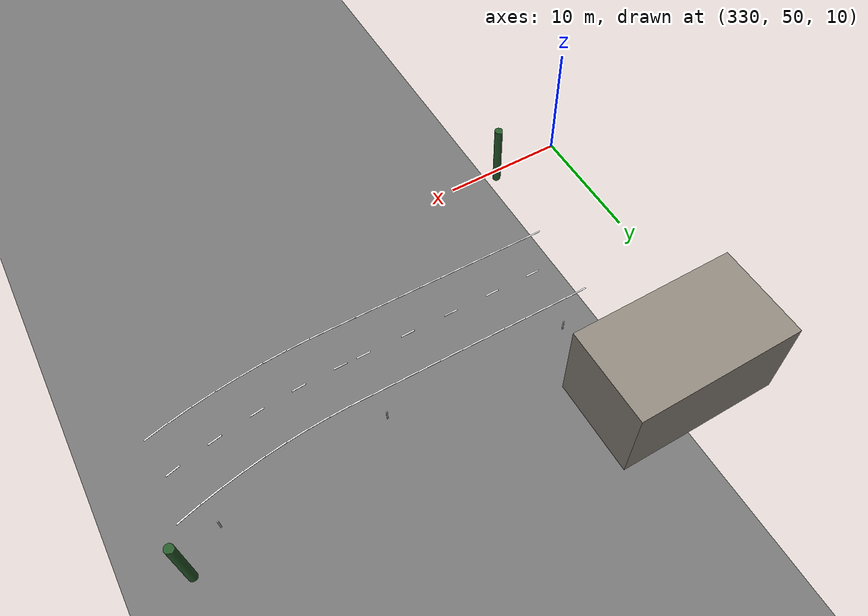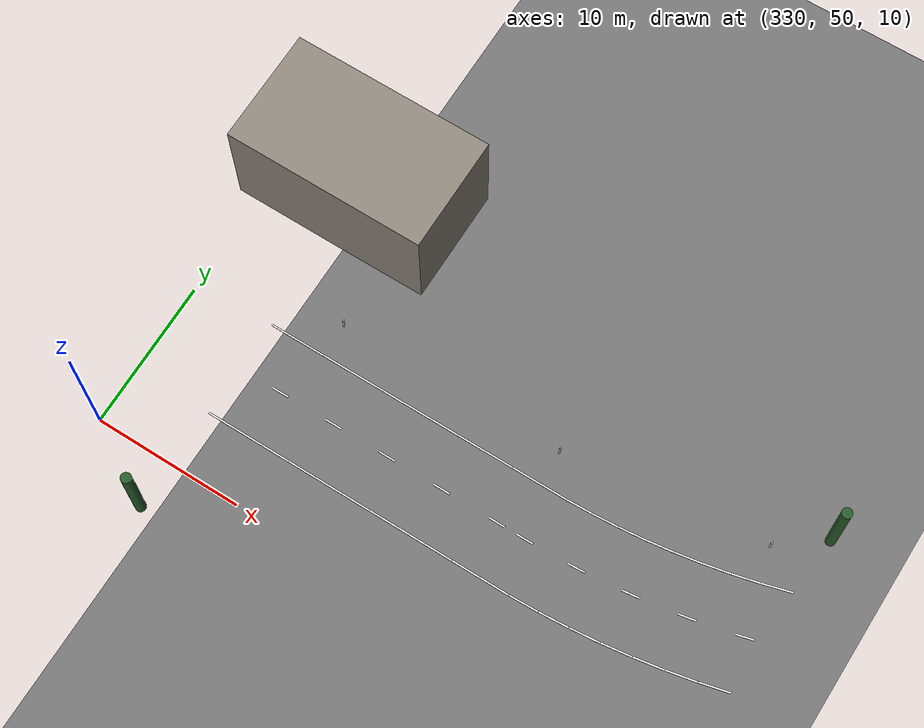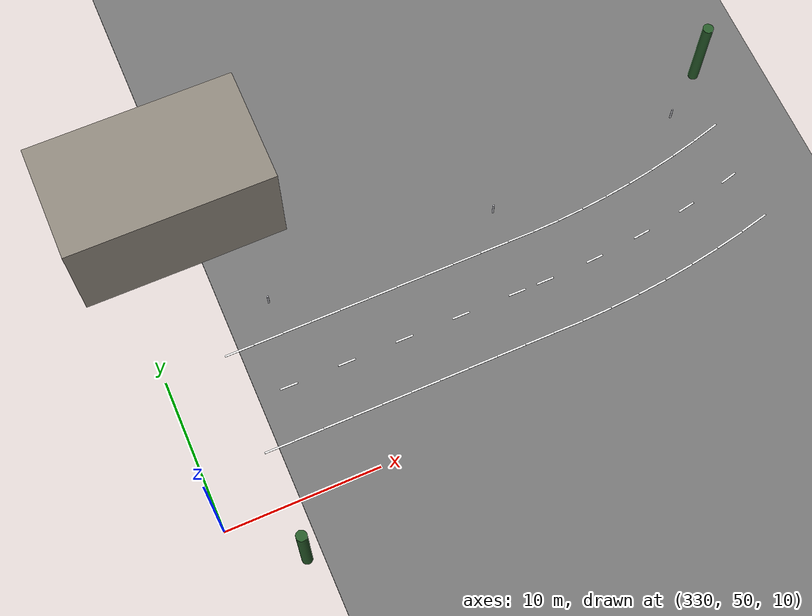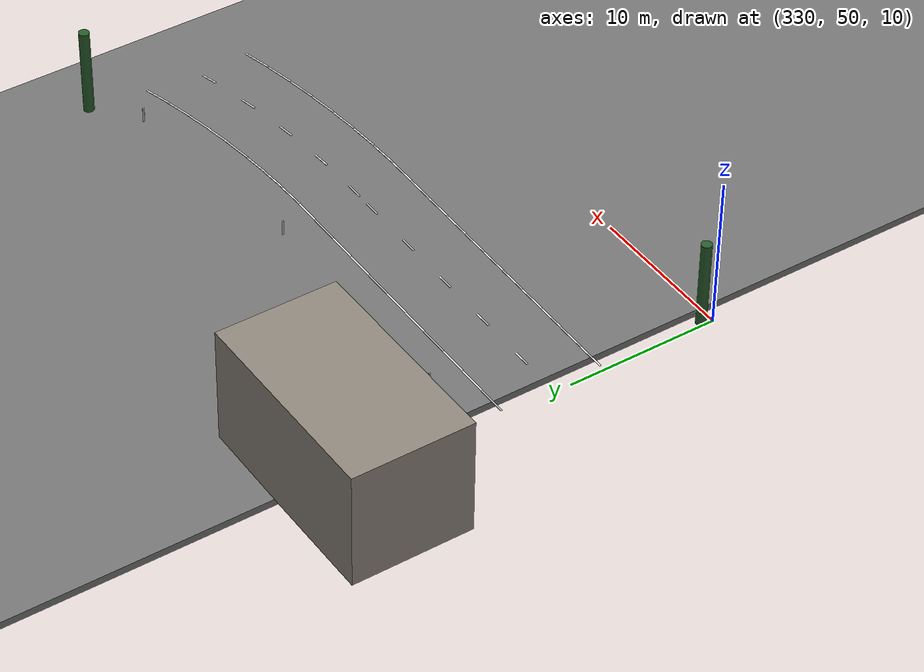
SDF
<sdf version="1.4">
 <world name="marathon_course">
  <include><uri>model://sun</uri></include>
  <model name="road_9">
   <static>true</static>
   <pose>355.2043631016093 37.70038853386919 5.950077138713788 0 -0.017453292519943295 0</pose>
   <link name="link">
    <collision name="collision">
     <geometry><box><size>40.4 125.40077706773837 0.5</size></box></geometry>
    </collision>
    <visual name="visual">
     <geometry><box><size>40.4 125.40077706773837 0.5</size></box></geometry>
     <material><ambient>0.45 0.45 0.45 1</ambient><diffuse>0.45 0.45 0.45 1</diffuse></material>
    </visual>
   </link>
  </model>
  <model name="paint_left_edge_172">
   <static>true</static>
   <pose>335.08319472663095 61.80058280080378 5.868898920307919 0 0 0.0</pose>
   <link name="link">
    <visual name="visual">
     <geometry><box><size>2.05 0.12 0.02</size></box></geometry>
     <material><ambient>0.95 0.95 0.95 1</ambient><diffuse>0.95 0.95 0.95 1</diffuse></material>
    </visual>
   </link>
  </model>
  <model name="paint_left_edge_173">
   <static>true</static>
   <pose>337.08319472663095 61.80058280080378 5.903809050164354 0 0 0.0</pose>
   <link name="link">
    <visual name="visual">
     <geometry><box><size>2.05 0.12 0.02</size></box></geometry>
     <material><ambient>0.95 0.95 0.95 1</ambient><diffuse>0.95 0.95 0.95 1</diffuse></material>
    </visual>
   </link>
  </model>
  <model name="paint_left_edge_174">
   <static>true</static>
   <pose>339.08319472663095 61.80058280080378 5.938719180020789 0 0 0.0</pose>
   <link name="link">
    <visual name="visual">
     <geometry><box><size>2.05 0.12 0.02</size></box></geometry>
     <material><ambient>0.95 0.95 0.95 1</ambient><diffuse>0.95 0.95 0.95 1</diffuse></material>
    </visual>
   </link>
  </model>
  <model name="paint_left_edge_175">
   <static>true</static>
   <pose>341.08319472663095 61.80058280080378 5.973629309877225 0 0 0.0</pose>
   <link name="link">
    <visual name="visual">
     <geometry><box><size>2.05 0.12 0.02</size></box></geometry>
     <material><ambient>0.95 0.95 0.95 1</ambient><diffuse>0.95 0.95 0.95 1</diffuse></material>
    </visual>
   </link>
  </model>
  <model name="paint_left_edge_176">
   <static>true</static>
   <pose>343.08319472663095 61.80058280080378 6.00853943973366 0 0 0.0</pose>
   <link name="link">
    <visual name="visual">
     <geometry><box><size>2.05 0.12 0.02</size></box></geometry>
     <material><ambient>0.95 0.95 0.95 1</ambient><diffuse>0.95 0.95 0.95 1</diffuse></material>
    </visual>
   </link>
  </model>
  <model name="paint_left_edge_177">
   <static>true</static>
   <pose>345.08319472663095 61.80058280080378 6.043449569590095 0 0 0.0</pose>
   <link name="link">
    <visual name="visual">
     <geometry><box><size>2.05 0.12 0.02</size></box></geometry>
     <material><ambient>0.95 0.95 0.95 1</ambient><diffuse>0.95 0.95 0.95 1</diffuse></material>
    </visual>
   </link>
  </model>
  <model name="paint_left_edge_178">
   <static>true</static>
   <pose>347.08319472663095 61.80058280080378 6.07835969944653 0 0 0.0</pose>
   <link name="link">
    <visual name="visual">
     <geometry><box><size>2.05 0.12 0.02</size></box></geometry>
     <material><ambient>0.95 0.95 0.95 1</ambient><diffuse>0.95 0.95 0.95 1</diffuse></material>
    </visual>
   </link>
  </model>
  <model name="paint_left_edge_179">
   <static>true</static>
   <pose>349.08319472663095 61.80058280080378 6.113269829302966 0 0 0.0</pose>
   <link name="link">
    <visual name="visual">
     <geometry><box><size>2.05 0.12 0.02</size></box></geometry>
     <material><ambient>0.95 0.95 0.95 1</ambient><diffuse>0.95 0.95 0.95 1</diffuse></material>
    </visual>
   </link>
  </model>
  <model name="paint_left_edge_180">
   <static>true</static>
   <pose>351.08319472663095 61.80058280080378 6.148179959159401 0 0 0.0</pose>
   <link name="link">
    <visual name="visual">
     <geometry><box><size>2.05 0.12 0.02</size></box></geometry>
     <material><ambient>0.95 0.95 0.95 1</ambient><diffuse>0.95 0.95 0.95 1</diffuse></material>
    </visual>
   </link>
  </model>
  <model name="paint_left_edge_181">
   <static>true</static>
   <pose>353.08319472663095 61.80058280080378 6.183090089015836 0 0 0.0</pose>
   <link name="link">
    <visual name="visual">
     <geometry><box><size>2.05 0.12 0.02</size></box></geometry>
     <material><ambient>0.95 0.95 0.95 1</ambient><diffuse>0.95 0.95 0.95 1</diffuse></material>
    </visual>
   </link>
  </model>
  <model name="paint_left_edge_182">
   <static>true</static>
   <pose>355.08319472663095 61.80058280080378 6.2180002188722705 0 0 0.0</pose>
   <link name="link">
    <visual name="visual">
     <geometry><box><size>2.05 0.12 0.02</size></box></geometry>
     <material><ambient>0.95 0.95 0.95 1</ambient><diffuse>0.95 0.95 0.95 1</diffuse></material>
    </visual>
   </link>
  </model>
  <model name="paint_left_edge_183">
   <static>true</static>
   <pose>356.92048003579043 61.83141903989871 6.25007015323531 0 0 0.03356402407681403</pose>
   <link name="link">
    <visual name="visual">
     <geometry><box><size>2.05 0.12 0.02</size></box></geometry>
     <material><ambient>0.95 0.95 0.95 1</ambient><diffuse>0.95 0.95 0.95 1</diffuse></material>
    </visual>
   </link>
  </model>
  <model name="paint_left_edge_184">
   <static>true</static>
   <pose>358.7556957570383 61.92389302207331 6.2821039628069775 0 0 0.06712804815362806</pose>
   <link name="link">
    <visual name="visual">
     <geometry><box><size>2.05 0.12 0.02</size></box></geometry>
     <material><ambient>0.95 0.95 0.95 1</ambient><diffuse>0.95 0.95 0.95 1</diffuse></material>
    </visual>
   </link>
  </model>
  <model name="paint_left_edge_185">
   <static>true</static>
   <pose>360.5867746337255 62.077900581123934 6.31406556348824 0 0 0.10069207223044209</pose>
   <link name="link">
    <visual name="visual">
     <geometry><box><size>2.05 0.12 0.02</size></box></geometry>
     <material><ambient>0.95 0.95 0.95 1</ambient><diffuse>0.95 0.95 0.95 1</diffuse></material>
    </visual>
   </link>
  </model>
  <model name="paint_left_edge_186">
   <static>true</static>
   <pose>362.41165406910153 62.29326823709029 6.345918952518898 0 0 0.13425609630725613</pose>
   <link name="link">
    <visual name="visual">
     <geometry><box><size>2.05 0.12 0.02</size></box></geometry>
     <material><ambient>0.95 0.95 0.95 1</ambient><diffuse>0.95 0.95 0.95 1</diffuse></material>
    </visual>
   </link>
  </model>
  <model name="paint_left_edge_187">
   <static>true</static>
   <pose>364.228278449702 62.56975339166982 6.377628249032462 0 0 0.16782012038407015</pose>
   <link name="link">
    <visual name="visual">
     <geometry><box><size>2.05 0.12 0.02</size></box></geometry>
     <material><ambient>0.95 0.95 0.95 1</ambient><diffuse>0.95 0.95 0.95 1</diffuse></material>
    </visual>
   </link>
  </model>
  <model name="paint_left_edge_188">
   <static>true</static>
   <pose>366.03460146086934 62.90704460148963 6.409157734473721 0 0 0.20138414446088418</pose>
   <link name="link">
    <visual name="visual">
     <geometry><box><size>2.05 0.12 0.02</size></box></geometry>
     <material><ambient>0.95 0.95 0.95 1</ambient><diffuse>0.95 0.95 0.95 1</diffuse></material>
    </visual>
   </link>
  </model>
  <model name="paint_left_edge_189">
   <static>true</static>
   <pose>367.8285883918 63.30476192892814 6.440471892833489 0 0 0.2349481685376982</pose>
   <link name="link">
    <visual name="visual">
     <geometry><box><size>2.05 0.12 0.02</size></box></geometry>
     <material><ambient>0.95 0.95 0.95 1</ambient><diffuse>0.95 0.95 0.95 1</diffuse></material>
    </visual>
   </link>
  </model>
  <model name="paint_left_edge_190">
   <static>true</static>
   <pose>369.60821842751903 63.76245737009124 6.471535450655172 0 0 0.26851219261451226</pose>
   <link name="link">
    <visual name="visual">
     <geometry><box><size>2.05 0.12 0.02</size></box></geometry>
     <material><ambient>0.95 0.95 0.95 1</ambient><diffuse>0.95 0.95 0.95 1</diffuse></material>
    </visual>
   </link>
  </model>
  <model name="paint_right_edge_172">
   <static>true</static>
   <pose>335.08319472663095 54.80058280080378 5.868898920307919 0 0 0.0</pose>
   <link name="link">
    <visual name="visual">
     <geometry><box><size>2.05 0.12 0.02</size></box></geometry>
     <material><ambient>0.95 0.95 0.95 1</ambient><diffuse>0.95 0.95 0.95 1</diffuse></material>
    </visual>
   </link>
  </model>
  <model name="paint_right_edge_173">
   <static>true</static>
   <pose>337.08319472663095 54.80058280080378 5.903809050164354 0 0 0.0</pose>
   <link name="link">
    <visual name="visual">
     <geometry><box><size>2.05 0.12 0.02</size></box></geometry>
     <material><ambient>0.95 0.95 0.95 1</ambient><diffuse>0.95 0.95 0.95 1</diffuse></material>
    </visual>
   </link>
  </model>
  <model name="paint_right_edge_174">
   <static>true</static>
   <pose>339.08319472663095 54.80058280080378 5.938719180020789 0 0 0.0</pose>
   <link name="link">
    <visual name="visual">
     <geometry><box><size>2.05 0.12 0.02</size></box></geometry>
     <material><ambient>0.95 0.95 0.95 1</ambient><diffuse>0.95 0.95 0.95 1</diffuse></material>
    </visual>
   </link>
  </model>
  <model name="paint_right_edge_175">
   <static>true</static>
   <pose>341.08319472663095 54.80058280080378 5.973629309877225 0 0 0.0</pose>
   <link name="link">
    <visual name="visual">
     <geometry><box><size>2.05 0.12 0.02</size></box></geometry>
     <material><ambient>0.95 0.95 0.95 1</ambient><diffuse>0.95 0.95 0.95 1</diffuse></material>
    </visual>
   </link>
  </model>
  <model name="paint_right_edge_176">
   <static>true</static>
   <pose>343.08319472663095 54.80058280080378 6.00853943973366 0 0 0.0</pose>
   <link name="link">
    <visual name="visual">
     <geometry><box><size>2.05 0.12 0.02</size></box></geometry>
     <material><ambient>0.95 0.95 0.95 1</ambient><diffuse>0.95 0.95 0.95 1</diffuse></material>
    </visual>
   </link>
  </model>
  <model name="paint_right_edge_177">
   <static>true</static>
   <pose>345.08319472663095 54.80058280080378 6.043449569590095 0 0 0.0</pose>
   <link name="link">
    <visual name="visual">
     <geometry><box><size>2.05 0.12 0.02</size></box></geometry>
     <material><ambient>0.95 0.95 0.95 1</ambient><diffuse>0.95 0.95 0.95 1</diffuse></material>
    </visual>
   </link>
  </model>
  <model name="paint_right_edge_178">
   <static>true</static>
   <pose>347.08319472663095 54.80058280080378 6.07835969944653 0 0 0.0</pose>
   <link name="link">
    <visual name="visual">
     <geometry><box><size>2.05 0.12 0.02</size></box></geometry>
     <material><ambient>0.95 0.95 0.95 1</ambient><diffuse>0.95 0.95 0.95 1</diffuse></material>
    </visual>
   </link>
  </model>
  <model name="paint_right_edge_179">
   <static>true</static>
   <pose>349.08319472663095 54.80058280080378 6.113269829302966 0 0 0.0</pose>
   <link name="link">
    <visual name="visual">
     <geometry><box><size>2.05 0.12 0.02</size></box></geometry>
     <material><ambient>0.95 0.95 0.95 1</ambient><diffuse>0.95 0.95 0.95 1</diffuse></material>
    </visual>
   </link>
  </model>
  <model name="paint_right_edge_180">
   <static>true</static>
   <pose>351.08319472663095 54.80058280080378 6.148179959159401 0 0 0.0</pose>
   <link name="link">
    <visual name="visual">
     <geometry><box><size>2.05 0.12 0.02</size></box></geometry>
     <material><ambient>0.95 0.95 0.95 1</ambient><diffuse>0.95 0.95 0.95 1</diffuse></material>
    </visual>
   </link>
  </model>
  <model name="paint_right_edge_181">
   <static>true</static>
   <pose>353.08319472663095 54.80058280080378 6.183090089015836 0 0 0.0</pose>
   <link name="link">
    <visual name="visual">
     <geometry><box><size>2.05 0.12 0.02</size></box></geometry>
     <material><ambient>0.95 0.95 0.95 1</ambient><diffuse>0.95 0.95 0.95 1</diffuse></material>
    </visual>
   </link>
  </model>
  <model name="paint_right_edge_182">
   <static>true</static>
   <pose>355.08319472663095 54.80058280080378 6.2180002188722705 0 0 0.0</pose>
   <link name="link">
    <visual name="visual">
     <geometry><box><size>2.05 0.12 0.02</size></box></geometry>
     <material><ambient>0.95 0.95 0.95 1</ambient><diffuse>0.95 0.95 0.95 1</diffuse></material>
    </visual>
   </link>
  </model>
  <model name="paint_right_edge_183">
   <static>true</static>
   <pose>357.15538409358254 54.835361572751026 6.254170418815973 0 0 0.03356402407681403</pose>
   <link name="link">
    <visual name="visual">
     <geometry><box><size>2.05 0.12 0.02</size></box></geometry>
     <material><ambient>0.95 0.95 0.95 1</ambient><diffuse>0.95 0.95 0.95 1</diffuse></material>
    </visual>
   </link>
  </model>
  <model name="paint_right_edge_184">
   <static>true</static>
   <pose>359.2252392677753 54.93965871246393 6.290299875273515 0 0 0.06712804815362806</pose>
   <link name="link">
    <visual name="visual">
     <geometry><box><size>2.05 0.12 0.02</size></box></geometry>
     <material><ambient>0.95 0.95 0.95 1</ambient><diffuse>0.95 0.95 0.95 1</diffuse></material>
    </visual>
   </link>
  </model>
  <model name="paint_right_edge_185">
   <static>true</static>
   <pose>361.29042868577415 55.113356735685414 6.326347890653753 0 0 0.10069207223044209</pose>
   <link name="link">
    <visual name="visual">
     <geometry><box><size>2.05 0.12 0.02</size></box></geometry>
     <material><ambient>0.95 0.95 0.95 1</ambient><diffuse>0.95 0.95 0.95 1</diffuse></material>
    </visual>
   </link>
  </model>
  <model name="paint_right_edge_186">
   <static>true</static>
   <pose>363.34862603982833 55.35625998236893 6.362273859103854 0 0 0.13425609630725613</pose>
   <link name="link">
    <visual name="visual">
     <geometry><box><size>2.05 0.12 0.02</size></box></geometry>
     <material><ambient>0.95 0.95 0.95 1</ambient><diffuse>0.95 0.95 0.95 1</diffuse></material>
    </visual>
   </link>
  </model>
  <model name="paint_right_edge_187">
   <static>true</static>
   <pose>365.3975128983138 55.66809483707735 6.398037312249289 0 0 0.16782012038407015</pose>
   <link name="link">
    <visual name="visual">
     <geometry><box><size>2.05 0.12 0.02</size></box></geometry>
     <material><ambient>0.95 0.95 0.95 1</ambient><diffuse>0.95 0.95 0.95 1</diffuse></material>
    </visual>
   </link>
  </model>
  <model name="paint_right_edge_188">
   <static>true</static>
   <pose>367.43478131730166 56.04851003719376 6.433597964778929 0 0 0.20138414446088418</pose>
   <link name="link">
    <visual name="visual">
     <geometry><box><size>2.05 0.12 0.02</size></box></geometry>
     <material><ambient>0.95 0.95 0.95 1</ambient><diffuse>0.95 0.95 0.95 1</diffuse></material>
    </visual>
   </link>
  </model>
  <model name="paint_right_edge_189">
   <static>true</static>
   <pose>369.4581364403148 56.497077068597 6.4689157598239655 0 0 0.2349481685376982</pose>
   <link name="link">
    <visual name="visual">
     <geometry><box><size>2.05 0.12 0.02</size></box></geometry>
     <material><ambient>0.95 0.95 0.95 1</ambient><diffuse>0.95 0.95 0.95 1</diffuse></material>
    </visual>
   </link>
  </model>
  <model name="paint_divider_94">
   <static>true</static>
   <pose>337.08319472663095 58.30058280080378 5.903809050164354 0 0 0.0</pose>
   <link name="link">
    <visual name="visual">
     <geometry><box><size>1.2 0.12 0.02</size></box></geometry>
     <material><ambient>0.95 0.95 0.95 1</ambient><diffuse>0.95 0.95 0.95 1</diffuse></material>
    </visual>
   </link>
  </model>
  <model name="paint_divider_95">
   <static>true</static>
   <pose>341.08319472663095 58.30058280080378 5.973629309877225 0 0 0.0</pose>
   <link name="link">
    <visual name="visual">
     <geometry><box><size>1.2 0.12 0.02</size></box></geometry>
     <material><ambient>0.95 0.95 0.95 1</ambient><diffuse>0.95 0.95 0.95 1</diffuse></material>
    </visual>
   </link>
  </model>
  <model name="paint_divider_96">
   <static>true</static>
   <pose>345.08319472663095 58.30058280080378 6.043449569590095 0 0 0.0</pose>
   <link name="link">
    <visual name="visual">
     <geometry><box><size>1.2 0.12 0.02</size></box></geometry>
     <material><ambient>0.95 0.95 0.95 1</ambient><diffuse>0.95 0.95 0.95 1</diffuse></material>
    </visual>
   </link>
  </model>
  <model name="paint_divider_97">
   <static>true</static>
   <pose>349.08319472663095 58.30058280080378 6.113269829302966 0 0 0.0</pose>
   <link name="link">
    <visual name="visual">
     <geometry><box><size>1.2 0.12 0.02</size></box></geometry>
     <material><ambient>0.95 0.95 0.95 1</ambient><diffuse>0.95 0.95 0.95 1</diffuse></material>
    </visual>
   </link>
  </model>
  <model name="paint_divider_98">
   <static>true</static>
   <pose>353.08319472663095 58.30058280080378 6.183090089015836 0 0 0.0</pose>
   <link name="link">
    <visual name="visual">
     <geometry><box><size>1.2 0.12 0.02</size></box></geometry>
     <material><ambient>0.95 0.95 0.95 1</ambient><diffuse>0.95 0.95 0.95 1</diffuse></material>
    </visual>
   </link>
  </model>
  <model name="paint_divider_99">
   <static>true</static>
   <pose>355.08319472663095 58.30058280080378 6.2180002188722705 0 0 0.0</pose>
   <link name="link">
    <visual name="visual">
     <geometry><box><size>1.2 0.12 0.02</size></box></geometry>
     <material><ambient>0.95 0.95 0.95 1</ambient><diffuse>0.95 0.95 0.95 1</diffuse></material>
    </visual>
   </link>
  </model>
  <model name="paint_divider_100">
   <static>true</static>
   <pose>358.7117520883936 58.413709205189804 6.2813369232176 0 0 0.06233318757122605</pose>
   <link name="link">
    <visual name="visual">
     <geometry><box><size>1.2 0.12 0.02</size></box></geometry>
     <material><ambient>0.95 0.95 0.95 1</ambient><diffuse>0.95 0.95 0.95 1</diffuse></material>
    </visual>
   </link>
  </model>
  <model name="paint_divider_101">
   <static>true</static>
   <pose>362.32621552234696 58.75264901634375 6.344427617137924 0 0 0.1246663751424521</pose>
   <link name="link">
    <visual name="visual">
     <geometry><box><size>1.2 0.12 0.02</size></box></geometry>
     <material><ambient>0.95 0.95 0.95 1</ambient><diffuse>0.95 0.95 0.95 1</diffuse></material>
    </visual>
   </link>
  </model>
  <model name="paint_divider_102">
   <static>true</static>
   <pose>365.91254584387076 59.31608573496474 6.407027245754158 0 0 0.18699956271367815</pose>
   <link name="link">
    <visual name="visual">
     <geometry><box><size>1.2 0.12 0.02</size></box></geometry>
     <material><ambient>0.95 0.95 0.95 1</ambient><diffuse>0.95 0.95 0.95 1</diffuse></material>
    </visual>
   </link>
  </model>
  <model name="paint_divider_103">
   <static>true</static>
   <pose>369.4568131420906 60.10183087795999 6.468892661567543 0 0 0.2493327502849042</pose>
   <link name="link">
    <visual name="visual">
     <geometry><box><size>1.2 0.12 0.02</size></box></geometry>
     <material><ambient>0.95 0.95 0.95 1</ambient><diffuse>0.95 0.95 0.95 1</diffuse></material>
    </visual>
   </link>
  </model>
  <model name="building_8">
   <static>true</static>
   <pose>334.00540534349096 72.55058280080378 9.830086036646268 0 0 0.0</pose>
   <link name="link">
    <collision name="collision"><geometry><box><size>14.0 8.0 8.0</size></box></geometry></collision>
    <visual name="visual">
     <geometry><box><size>14.0 8.0 8.0</size></box></geometry>
     <material><ambient>0.55 0.52 0.48 1</ambient><diffuse>0.55 0.52 0.48 1</diffuse></material>
    </visual>
   </link>
  </model>
  <model name="tree_8">
   <static>true</static>
   <pose>334.00540534349096 47.55058280080378 8.830086036646268 0 0 0.0</pose>
   <link name="link">
    <collision name="collision">
     <geometry><cylinder><radius>0.35</radius><length>6.0</length></cylinder></geometry>
    </collision>
    <visual name="visual">
     <geometry><cylinder><radius>0.35</radius><length>6.0</length></cylinder></geometry>
     <material><ambient>0.15 0.35 0.16 1</ambient><diffuse>0.15 0.35 0.16 1</diffuse></material>
    </visual>
   </link>
  </model>
  <model name="tree_9">
   <static>true</static>
   <pose>370.9015364038832 68.06720122502837 9.47411039990544 0 0 0.31537387779358633</pose>
   <link name="link">
    <collision name="collision">
     <geometry><cylinder><radius>0.35</radius><length>6.0</length></cylinder></geometry>
    </collision>
    <visual name="visual">
     <geometry><cylinder><radius>0.35</radius><length>6.0</length></cylinder></geometry>
     <material><ambient>0.15 0.35 0.16 1</ambient><diffuse>0.15 0.35 0.16 1</diffuse></material>
    </visual>
   </link>
  </model>
  <model name="barrier_21">
   <static>true</static>
   <pose>338.00540534349096 64.15058280080378 6.424906296359138 0 0 0.0</pose>
   <link name="link">
    <collision name="collision">
     <geometry><cylinder><radius>0.06</radius><length>1.05</length></cylinder></geometry>
    </collision>
    <visual name="visual">
     <geometry><cylinder><radius>0.06</radius><length>1.05</length></cylinder></geometry>
     <material><ambient>0.75 0.75 0.78 1</ambient><diffuse>0.75 0.75 0.78 1</diffuse></material>
    </visual>
   </link>
  </model>
  <model name="barrier_22">
   <static>true</static>
   <pose>354.00540534349096 64.15058280080378 6.704187335210619 0 0 0.0</pose>
   <link name="link">
    <collision name="collision">
     <geometry><cylinder><radius>0.06</radius><length>1.05</length></cylinder></geometry>
    </collision>
    <visual name="visual">
     <geometry><cylinder><radius>0.06</radius><length>1.05</length></cylinder></geometry>
     <material><ambient>0.75 0.75 0.78 1</ambient><diffuse>0.75 0.75 0.78 1</diffuse></material>
    </visual>
   </link>
  </model>
  <model name="barrier_23">
   <static>true</static>
   <pose>367.98117257089126 65.7640553010919 6.9481352595865475 0 0 0.2487064287984705</pose>
   <link name="link">
    <collision name="collision">
     <geometry><cylinder><radius>0.06</radius><length>1.05</length></cylinder></geometry>
    </collision>
    <visual name="visual">
     <geometry><cylinder><radius>0.06</radius><length>1.05</length></cylinder></geometry>
     <material><ambient>0.75 0.75 0.78 1</ambient><diffuse>0.75 0.75 0.78 1</diffuse></material>
    </visual>
   </link>
  </model>
 </world>
</sdf>
